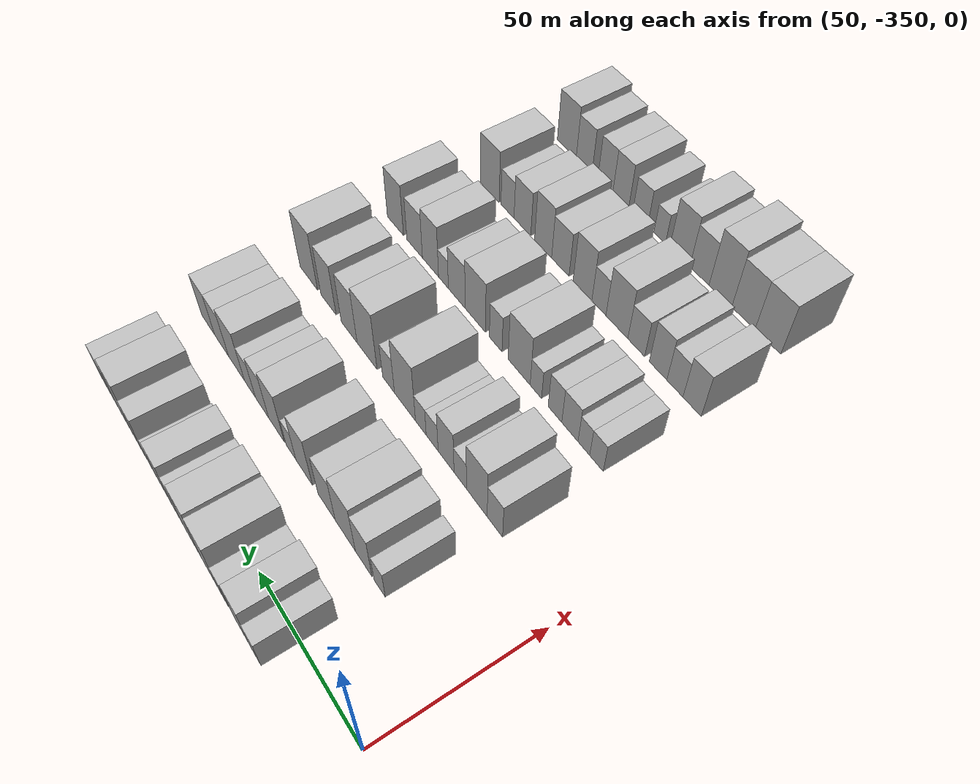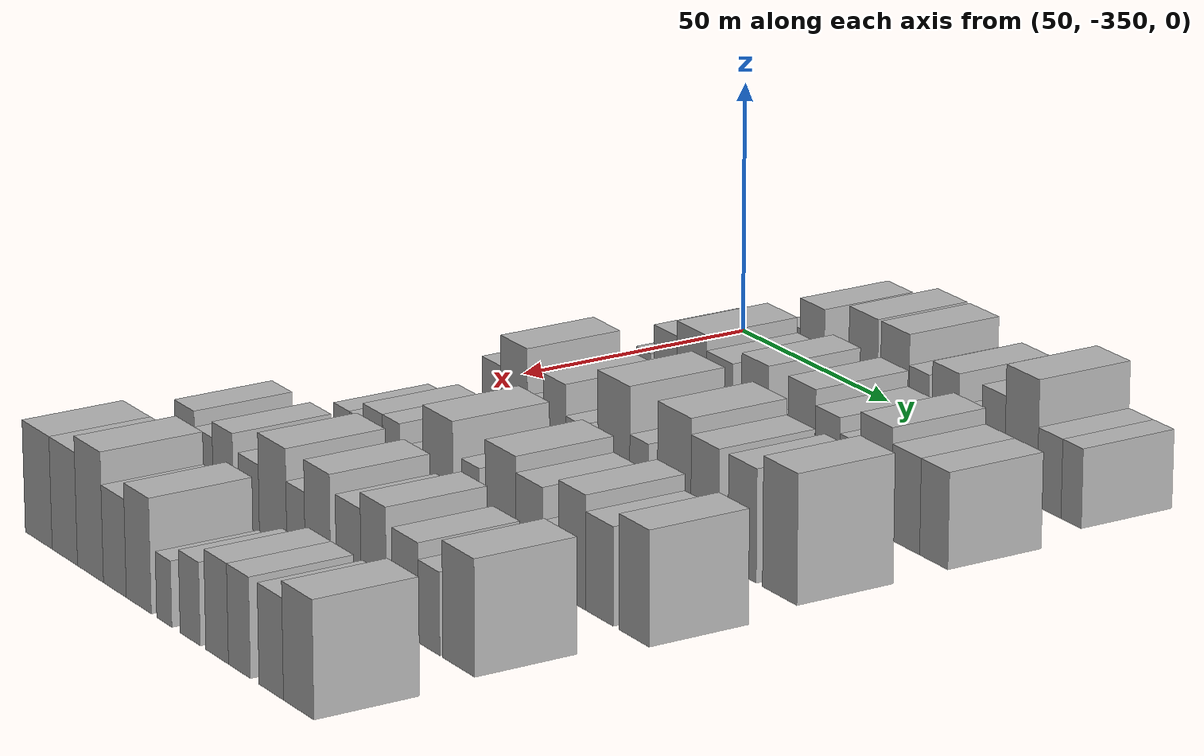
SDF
<sdf version="1.6">
 <world name="default">
  <model name="building_26">
   <static>1</static>
   <pose>50.0000 -318.0767 0 0.000000 0.000000 0.000000</pose>
   <link name="link">
    <pose>0 0 6.00 0 0 0</pose>
    <collision name="collision"><geometry><box><size>20.0000 5.7258 12.0000</size></box></geometry></collision>
    <visual name="visual">
     <cast_shadows>0</cast_shadows>
     <geometry><box><size>20.0000 5.7258 12.0000</size></box></geometry>
     <material>
      <script>
       <uri>model://HANNAS_wall/materials/scripts</uri>
       <uri>model://HANNAS_wall/materials/textures</uri>
       <name>vrc/HANNAS_wall</name>
      </script>
     </material>
    </visual>
   </link>
  </model>
  <model name="building_27">
   <static>1</static>
   <pose>50.0000 -311.0835 0 0.000000 0.000000 0.000000</pose>
   <link name="link">
    <pose>0 0 9.00 0 0 0</pose>
    <collision name="collision"><geometry><box><size>20.0000 8.2607 18.0000</size></box></geometry></collision>
    <visual name="visual">
     <cast_shadows>0</cast_shadows>
     <geometry><box><size>20.0000 8.2607 18.0000</size></box></geometry>
     <material>
      <script>
       <uri>model://HANNAS_wall/materials/scripts</uri>
       <uri>model://HANNAS_wall/materials/textures</uri>
       <name>vrc/HANNAS_wall</name>
      </script>
     </material>
    </visual>
   </link>
  </model>
  <model name="building_28">
   <static>1</static>
   <pose>50.0000 -301.3533 0 0.000000 0.000000 0.000000</pose>
   <link name="link">
    <pose>0 0 6.00 0 0 0</pose>
    <collision name="collision"><geometry><box><size>20.0000 5.1997 12.0000</size></box></geometry></collision>
    <visual name="visual">
     <cast_shadows>0</cast_shadows>
     <geometry><box><size>20.0000 5.1997 12.0000</size></box></geometry>
     <material>
      <script>
       <uri>model://HANNAS_wall/materials/scripts</uri>
       <uri>model://HANNAS_wall/materials/textures</uri>
       <name>vrc/HANNAS_wall</name>
      </script>
     </material>
    </visual>
   </link>
  </model>
  <model name="building_29">
   <static>1</static>
   <pose>50.0000 -293.9891 0 0.000000 0.000000 0.000000</pose>
   <link name="link">
    <pose>0 0 10.50 0 0 0</pose>
    <collision name="collision"><geometry><box><size>20.0000 9.5287 21.0000</size></box></geometry></collision>
    <visual name="visual">
     <cast_shadows>0</cast_shadows>
     <geometry><box><size>20.0000 9.5287 21.0000</size></box></geometry>
     <material>
      <script>
       <uri>model://HANNAS_wall/materials/scripts</uri>
       <uri>model://HANNAS_wall/materials/textures</uri>
       <name>vrc/HANNAS_wall</name>
      </script>
     </material>
    </visual>
   </link>
  </model>
  <model name="building_30">
   <static>1</static>
   <pose>50.0000 -283.5918 0 0.000000 0.000000 0.000000</pose>
   <link name="link">
    <pose>0 0 10.50 0 0 0</pose>
    <collision name="collision"><geometry><box><size>20.0000 9.2658 21.0000</size></box></geometry></collision>
    <visual name="visual">
     <cast_shadows>0</cast_shadows>
     <geometry><box><size>20.0000 9.2658 21.0000</size></box></geometry>
     <material>
      <script>
       <uri>model://HANNAS_wall/materials/scripts</uri>
       <uri>model://HANNAS_wall/materials/textures</uri>
       <name>vrc/HANNAS_wall</name>
      </script>
     </material>
    </visual>
   </link>
  </model>
  <model name="building_31">
   <static>1</static>
   <pose>50.0000 -275.7201 0 0.000000 0.000000 0.000000</pose>
   <link name="link">
    <pose>0 0 7.50 0 0 0</pose>
    <collision name="collision"><geometry><box><size>20.0000 6.4776 15.0000</size></box></geometry></collision>
    <visual name="visual">
     <cast_shadows>0</cast_shadows>
     <geometry><box><size>20.0000 6.4776 15.0000</size></box></geometry>
     <material>
      <script>
       <uri>model://HANNAS_wall/materials/scripts</uri>
       <uri>model://HANNAS_wall/materials/textures</uri>
       <name>vrc/HANNAS_wall</name>
      </script>
     </material>
    </visual>
   </link>
  </model>
  <model name="building_32">
   <static>1</static>
   <pose>50.0000 -267.2023 0 0.000000 0.000000 0.000000</pose>
   <link name="link">
    <pose>0 0 9.00 0 0 0</pose>
    <collision name="collision"><geometry><box><size>20.0000 8.5581 18.0000</size></box></geometry></collision>
    <visual name="visual">
     <cast_shadows>0</cast_shadows>
     <geometry><box><size>20.0000 8.5581 18.0000</size></box></geometry>
     <material>
      <script>
       <uri>model://HANNAS_wall/materials/scripts</uri>
       <uri>model://HANNAS_wall/materials/textures</uri>
       <name>vrc/HANNAS_wall</name>
      </script>
     </material>
    </visual>
   </link>
  </model>
  <model name="building_33">
   <static>1</static>
   <pose>50.0000 -260.3371 0 0.000000 0.000000 0.000000</pose>
   <link name="link">
    <pose>0 0 6.00 0 0 0</pose>
    <collision name="collision"><geometry><box><size>20.0000 5.1723 12.0000</size></box></geometry></collision>
    <visual name="visual">
     <cast_shadows>0</cast_shadows>
     <geometry><box><size>20.0000 5.1723 12.0000</size></box></geometry>
     <material>
      <script>
       <uri>model://HANNAS_wall/materials/scripts</uri>
       <uri>model://HANNAS_wall/materials/textures</uri>
       <name>vrc/HANNAS_wall</name>
      </script>
     </material>
    </visual>
   </link>
  </model>
  <model name="building_34">
   <static>1</static>
   <pose>50.0000 -252.0818 0 0.000000 0.000000 0.000000</pose>
   <link name="link">
    <pose>0 0 9.00 0 0 0</pose>
    <collision name="collision"><geometry><box><size>20.0000 7.3382 18.0000</size></box></geometry></collision>
    <visual name="visual">
     <cast_shadows>0</cast_shadows>
     <geometry><box><size>20.0000 7.3382 18.0000</size></box></geometry>
     <material>
      <script>
       <uri>model://HANNAS_wall/materials/scripts</uri>
       <uri>model://HANNAS_wall/materials/textures</uri>
       <name>vrc/HANNAS_wall</name>
      </script>
     </material>
    </visual>
   </link>
  </model>
  <model name="building_35">
   <static>1</static>
   <pose>50.0000 -243.3504 0 0.000000 0.000000 0.000000</pose>
   <link name="link">
    <pose>0 0 12.00 0 0 0</pose>
    <collision name="collision"><geometry><box><size>20.0000 10.1246 24.0000</size></box></geometry></collision>
    <visual name="visual">
     <cast_shadows>0</cast_shadows>
     <geometry><box><size>20.0000 10.1246 24.0000</size></box></geometry>
     <material>
      <script>
       <uri>model://HANNAS_wall/materials/scripts</uri>
       <uri>model://HANNAS_wall/materials/textures</uri>
       <name>vrc/HANNAS_wall</name>
      </script>
     </material>
    </visual>
   </link>
  </model>
  <model name="building_36">
   <static>1</static>
   <pose>50.0000 -234.6135 0 0.000000 0.000000 0.000000</pose>
   <link name="link">
    <pose>0 0 7.50 0 0 0</pose>
    <collision name="collision"><geometry><box><size>20.0000 7.3493 15.0000</size></box></geometry></collision>
    <visual name="visual">
     <cast_shadows>0</cast_shadows>
     <geometry><box><size>20.0000 7.3493 15.0000</size></box></geometry>
     <material>
      <script>
       <uri>model://HANNAS_wall/materials/scripts</uri>
       <uri>model://HANNAS_wall/materials/textures</uri>
       <name>vrc/HANNAS_wall</name>
      </script>
     </material>
    </visual>
   </link>
  </model>
  <model name="building_37">
   <static>1</static>
   <pose>50.0000 -227.8699 0 0.000000 0.000000 0.000000</pose>
   <link name="link">
    <pose>0 0 7.50 0 0 0</pose>
    <collision name="collision"><geometry><box><size>20.0000 6.1378 15.0000</size></box></geometry></collision>
    <visual name="visual">
     <cast_shadows>0</cast_shadows>
     <geometry><box><size>20.0000 6.1378 15.0000</size></box></geometry>
     <material>
      <script>
       <uri>model://HANNAS_wall/materials/scripts</uri>
       <uri>model://HANNAS_wall/materials/textures</uri>
       <name>vrc/HANNAS_wall</name>
      </script>
     </material>
    </visual>
   </link>
  </model>
  <model name="building_150">
   <static>1</static>
   <pose>82.0000 -319.8087 0 0.000000 0.000000 0.000000</pose>
   <link name="link">
    <pose>0 0 6.00 0 0 0</pose>
    <collision name="collision"><geometry><box><size>20.0000 5.2165 12.0000</size></box></geometry></collision>
    <visual name="visual">
     <cast_shadows>0</cast_shadows>
     <geometry><box><size>20.0000 5.2165 12.0000</size></box></geometry>
     <material>
      <script>
       <uri>model://HANNAS_wall/materials/scripts</uri>
       <uri>model://HANNAS_wall/materials/textures</uri>
       <name>vrc/HANNAS_wall</name>
      </script>
     </material>
    </visual>
   </link>
  </model>
  <model name="building_151">
   <static>1</static>
   <pose>82.0000 -312.2311 0 0.000000 0.000000 0.000000</pose>
   <link name="link">
    <pose>0 0 9.00 0 0 0</pose>
    <collision name="collision"><geometry><box><size>20.0000 7.9387 18.0000</size></box></geometry></collision>
    <visual name="visual">
     <cast_shadows>0</cast_shadows>
     <geometry><box><size>20.0000 7.9387 18.0000</size></box></geometry>
     <material>
      <script>
       <uri>model://HANNAS_wall/materials/scripts</uri>
       <uri>model://HANNAS_wall/materials/textures</uri>
       <name>vrc/HANNAS_wall</name>
      </script>
     </material>
    </visual>
   </link>
  </model>
  <model name="building_152">
   <static>1</static>
   <pose>82.0000 -303.2314 0 0.000000 0.000000 0.000000</pose>
   <link name="link">
    <pose>0 0 10.50 0 0 0</pose>
    <collision name="collision"><geometry><box><size>20.0000 10.0607 21.0000</size></box></geometry></collision>
    <visual name="visual">
     <cast_shadows>0</cast_shadows>
     <geometry><box><size>20.0000 10.0607 21.0000</size></box></geometry>
     <material>
      <script>
       <uri>model://HANNAS_wall/materials/scripts</uri>
       <uri>model://HANNAS_wall/materials/textures</uri>
       <name>vrc/HANNAS_wall</name>
      </script>
     </material>
    </visual>
   </link>
  </model>
  <model name="building_153">
   <static>1</static>
   <pose>82.0000 -293.7457 0 0.000000 0.000000 0.000000</pose>
   <link name="link">
    <pose>0 0 9.00 0 0 0</pose>
    <collision name="collision"><geometry><box><size>20.0000 8.9106 18.0000</size></box></geometry></collision>
    <visual name="visual">
     <cast_shadows>0</cast_shadows>
     <geometry><box><size>20.0000 8.9106 18.0000</size></box></geometry>
     <material>
      <script>
       <uri>model://HANNAS_wall/materials/scripts</uri>
       <uri>model://HANNAS_wall/materials/textures</uri>
       <name>vrc/HANNAS_wall</name>
      </script>
     </material>
    </visual>
   </link>
  </model>
  <model name="building_154">
   <static>1</static>
   <pose>82.0000 -281.8477 0 0.000000 0.000000 0.000000</pose>
   <link name="link">
    <pose>0 0 10.50 0 0 0</pose>
    <collision name="collision"><geometry><box><size>20.0000 8.8854 21.0000</size></box></geometry></collision>
    <visual name="visual">
     <cast_shadows>0</cast_shadows>
     <geometry><box><size>20.0000 8.8854 21.0000</size></box></geometry>
     <material>
      <script>
       <uri>model://HANNAS_wall/materials/scripts</uri>
       <uri>model://HANNAS_wall/materials/textures</uri>
       <name>vrc/HANNAS_wall</name>
      </script>
     </material>
    </visual>
   </link>
  </model>
  <model name="building_155">
   <static>1</static>
   <pose>82.0000 -274.6802 0 0.000000 0.000000 0.000000</pose>
   <link name="link">
    <pose>0 0 6.00 0 0 0</pose>
    <collision name="collision"><geometry><box><size>20.0000 5.4497 12.0000</size></box></geometry></collision>
    <visual name="visual">
     <cast_shadows>0</cast_shadows>
     <geometry><box><size>20.0000 5.4497 12.0000</size></box></geometry>
     <material>
      <script>
       <uri>model://HANNAS_wall/materials/scripts</uri>
       <uri>model://HANNAS_wall/materials/textures</uri>
       <name>vrc/HANNAS_wall</name>
      </script>
     </material>
    </visual>
   </link>
  </model>
  <model name="building_156">
   <static>1</static>
   <pose>82.0000 -266.4969 0 0.000000 0.000000 0.000000</pose>
   <link name="link">
    <pose>0 0 10.50 0 0 0</pose>
    <collision name="collision"><geometry><box><size>20.0000 8.9168 21.0000</size></box></geometry></collision>
    <visual name="visual">
     <cast_shadows>0</cast_shadows>
     <geometry><box><size>20.0000 8.9168 21.0000</size></box></geometry>
     <material>
      <script>
       <uri>model://HANNAS_wall/materials/scripts</uri>
       <uri>model://HANNAS_wall/materials/textures</uri>
       <name>vrc/HANNAS_wall</name>
      </script>
     </material>
    </visual>
   </link>
  </model>
  <model name="building_157">
   <static>1</static>
   <pose>82.0000 -258.1106 0 0.000000 0.000000 0.000000</pose>
   <link name="link">
    <pose>0 0 9.00 0 0 0</pose>
    <collision name="collision"><geometry><box><size>20.0000 7.8556 18.0000</size></box></geometry></collision>
    <visual name="visual">
     <cast_shadows>0</cast_shadows>
     <geometry><box><size>20.0000 7.8556 18.0000</size></box></geometry>
     <material>
      <script>
       <uri>model://HANNAS_wall/materials/scripts</uri>
       <uri>model://HANNAS_wall/materials/textures</uri>
       <name>vrc/HANNAS_wall</name>
      </script>
     </material>
    </visual>
   </link>
  </model>
  <model name="building_158">
   <static>1</static>
   <pose>82.0000 -250.9059 0 0.000000 0.000000 0.000000</pose>
   <link name="link">
    <pose>0 0 7.50 0 0 0</pose>
    <collision name="collision"><geometry><box><size>20.0000 6.5539 15.0000</size></box></geometry></collision>
    <visual name="visual">
     <cast_shadows>0</cast_shadows>
     <geometry><box><size>20.0000 6.5539 15.0000</size></box></geometry>
     <material>
      <script>
       <uri>model://HANNAS_wall/materials/scripts</uri>
       <uri>model://HANNAS_wall/materials/textures</uri>
       <name>vrc/HANNAS_wall</name>
      </script>
     </material>
    </visual>
   </link>
  </model>
  <model name="building_159">
   <static>1</static>
   <pose>82.0000 -242.6984 0 0.000000 0.000000 0.000000</pose>
   <link name="link">
    <pose>0 0 10.50 0 0 0</pose>
    <collision name="collision"><geometry><box><size>20.0000 9.8611 21.0000</size></box></geometry></collision>
    <visual name="visual">
     <cast_shadows>0</cast_shadows>
     <geometry><box><size>20.0000 9.8611 21.0000</size></box></geometry>
     <material>
      <script>
       <uri>model://HANNAS_wall/materials/scripts</uri>
       <uri>model://HANNAS_wall/materials/textures</uri>
       <name>vrc/HANNAS_wall</name>
      </script>
     </material>
    </visual>
   </link>
  </model>
  <model name="building_160">
   <static>1</static>
   <pose>82.0000 -233.3181 0 0.000000 0.000000 0.000000</pose>
   <link name="link">
    <pose>0 0 9.00 0 0 0</pose>
    <collision name="collision"><geometry><box><size>20.0000 8.8995 18.0000</size></box></geometry></collision>
    <visual name="visual">
     <cast_shadows>0</cast_shadows>
     <geometry><box><size>20.0000 8.8995 18.0000</size></box></geometry>
     <material>
      <script>
       <uri>model://HANNAS_wall/materials/scripts</uri>
       <uri>model://HANNAS_wall/materials/textures</uri>
       <name>vrc/HANNAS_wall</name>
      </script>
     </material>
    </visual>
   </link>
  </model>
  <model name="building_161">
   <static>1</static>
   <pose>82.0000 -224.5568 0 0.000000 0.000000 0.000000</pose>
   <link name="link">
    <pose>0 0 9.00 0 0 0</pose>
    <collision name="collision"><geometry><box><size>20.0000 8.6230 18.0000</size></box></geometry></collision>
    <visual name="visual">
     <cast_shadows>0</cast_shadows>
     <geometry><box><size>20.0000 8.6230 18.0000</size></box></geometry>
     <material>
      <script>
       <uri>model://HANNAS_wall/materials/scripts</uri>
       <uri>model://HANNAS_wall/materials/textures</uri>
       <name>vrc/HANNAS_wall</name>
      </script>
     </material>
    </visual>
   </link>
  </model>
  <model name="building_270">
   <static>1</static>
   <pose>114.0000 -321.6198 0 0.000000 0.000000 0.000000</pose>
   <link name="link">
    <pose>0 0 7.50 0 0 0</pose>
    <collision name="collision"><geometry><box><size>20.0000 6.7639 15.0000</size></box></geometry></collision>
    <visual name="visual">
     <cast_shadows>0</cast_shadows>
     <geometry><box><size>20.0000 6.7639 15.0000</size></box></geometry>
     <material>
      <script>
       <uri>model://HANNAS_wall/materials/scripts</uri>
       <uri>model://HANNAS_wall/materials/textures</uri>
       <name>vrc/HANNAS_wall</name>
      </script>
     </material>
    </visual>
   </link>
  </model>
  <model name="building_271">
   <static>1</static>
   <pose>114.0000 -313.5680 0 0.000000 0.000000 0.000000</pose>
   <link name="link">
    <pose>0 0 10.50 0 0 0</pose>
    <collision name="collision"><geometry><box><size>20.0000 9.3398 21.0000</size></box></geometry></collision>
    <visual name="visual">
     <cast_shadows>0</cast_shadows>
     <geometry><box><size>20.0000 9.3398 21.0000</size></box></geometry>
     <material>
      <script>
       <uri>model://HANNAS_wall/materials/scripts</uri>
       <uri>model://HANNAS_wall/materials/textures</uri>
       <name>vrc/HANNAS_wall</name>
      </script>
     </material>
    </visual>
   </link>
  </model>
  <model name="building_272">
   <static>1</static>
   <pose>114.0000 -306.0086 0 0.000000 0.000000 0.000000</pose>
   <link name="link">
    <pose>0 0 6.00 0 0 0</pose>
    <collision name="collision"><geometry><box><size>20.0000 5.7790 12.0000</size></box></geometry></collision>
    <visual name="visual">
     <cast_shadows>0</cast_shadows>
     <geometry><box><size>20.0000 5.7790 12.0000</size></box></geometry>
     <material>
      <script>
       <uri>model://HANNAS_wall/materials/scripts</uri>
       <uri>model://HANNAS_wall/materials/textures</uri>
       <name>vrc/HANNAS_wall</name>
      </script>
     </material>
    </visual>
   </link>
  </model>
  <model name="building_273">
   <static>1</static>
   <pose>114.0000 -299.3256 0 0.000000 0.000000 0.000000</pose>
   <link name="link">
    <pose>0 0 9.00 0 0 0</pose>
    <collision name="collision"><geometry><box><size>20.0000 7.5870 18.0000</size></box></geometry></collision>
    <visual name="visual">
     <cast_shadows>0</cast_shadows>
     <geometry><box><size>20.0000 7.5870 18.0000</size></box></geometry>
     <material>
      <script>
       <uri>model://HANNAS_wall/materials/scripts</uri>
       <uri>model://HANNAS_wall/materials/textures</uri>
       <name>vrc/HANNAS_wall</name>
      </script>
     </material>
    </visual>
   </link>
  </model>
  <model name="building_274">
   <static>1</static>
   <pose>114.0000 -292.6182 0 0.000000 0.000000 0.000000</pose>
   <link name="link">
    <pose>0 0 6.00 0 0 0</pose>
    <collision name="collision"><geometry><box><size>20.0000 5.8278 12.0000</size></box></geometry></collision>
    <visual name="visual">
     <cast_shadows>0</cast_shadows>
     <geometry><box><size>20.0000 5.8278 12.0000</size></box></geometry>
     <material>
      <script>
       <uri>model://HANNAS_wall/materials/scripts</uri>
       <uri>model://HANNAS_wall/materials/textures</uri>
       <name>vrc/HANNAS_wall</name>
      </script>
     </material>
    </visual>
   </link>
  </model>
  <model name="building_275">
   <static>1</static>
   <pose>114.0000 -287.0255 0 0.000000 0.000000 0.000000</pose>
   <link name="link">
    <pose>0 0 6.00 0 0 0</pose>
    <collision name="collision"><geometry><box><size>20.0000 5.3578 12.0000</size></box></geometry></collision>
    <visual name="visual">
     <cast_shadows>0</cast_shadows>
     <geometry><box><size>20.0000 5.3578 12.0000</size></box></geometry>
     <material>
      <script>
       <uri>model://HANNAS_wall/materials/scripts</uri>
       <uri>model://HANNAS_wall/materials/textures</uri>
       <name>vrc/HANNAS_wall</name>
      </script>
     </material>
    </visual>
   </link>
  </model>
  <model name="building_276">
   <static>1</static>
   <pose>114.0000 -278.9676 0 0.000000 0.000000 0.000000</pose>
   <link name="link">
    <pose>0 0 12.00 0 0 0</pose>
    <collision name="collision"><geometry><box><size>20.0000 10.7580 24.0000</size></box></geometry></collision>
    <visual name="visual">
     <cast_shadows>0</cast_shadows>
     <geometry><box><size>20.0000 10.7580 24.0000</size></box></geometry>
     <material>
      <script>
       <uri>model://HANNAS_wall/materials/scripts</uri>
       <uri>model://HANNAS_wall/materials/textures</uri>
       <name>vrc/HANNAS_wall</name>
      </script>
     </material>
    </visual>
   </link>
  </model>
  <model name="building_277">
   <static>1</static>
   <pose>114.0000 -270.4564 0 0.000000 0.000000 0.000000</pose>
   <link name="link">
    <pose>0 0 7.50 0 0 0</pose>
    <collision name="collision"><geometry><box><size>20.0000 6.2644 15.0000</size></box></geometry></collision>
    <visual name="visual">
     <cast_shadows>0</cast_shadows>
     <geometry><box><size>20.0000 6.2644 15.0000</size></box></geometry>
     <material>
      <script>
       <uri>model://HANNAS_wall/materials/scripts</uri>
       <uri>model://HANNAS_wall/materials/textures</uri>
       <name>vrc/HANNAS_wall</name>
      </script>
     </material>
    </visual>
   </link>
  </model>
  <model name="building_278">
   <static>1</static>
   <pose>114.0000 -258.8366 0 0.000000 0.000000 0.000000</pose>
   <link name="link">
    <pose>0 0 12.00 0 0 0</pose>
    <collision name="collision"><geometry><box><size>20.0000 10.9751 24.0000</size></box></geometry></collision>
    <visual name="visual">
     <cast_shadows>0</cast_shadows>
     <geometry><box><size>20.0000 10.9751 24.0000</size></box></geometry>
     <material>
      <script>
       <uri>model://HANNAS_wall/materials/scripts</uri>
       <uri>model://HANNAS_wall/materials/textures</uri>
       <name>vrc/HANNAS_wall</name>
      </script>
     </material>
    </visual>
   </link>
  </model>
  <model name="building_279">
   <static>1</static>
   <pose>114.0000 -248.8255 0 0.000000 0.000000 0.000000</pose>
   <link name="link">
    <pose>0 0 10.50 0 0 0</pose>
    <collision name="collision"><geometry><box><size>20.0000 9.0470 21.0000</size></box></geometry></collision>
    <visual name="visual">
     <cast_shadows>0</cast_shadows>
     <geometry><box><size>20.0000 9.0470 21.0000</size></box></geometry>
     <material>
      <script>
       <uri>model://HANNAS_wall/materials/scripts</uri>
       <uri>model://HANNAS_wall/materials/textures</uri>
       <name>vrc/HANNAS_wall</name>
      </script>
     </material>
    </visual>
   </link>
  </model>
  <model name="building_280">
   <static>1</static>
   <pose>114.0000 -236.8016 0 0.000000 0.000000 0.000000</pose>
   <link name="link">
    <pose>0 0 10.50 0 0 0</pose>
    <collision name="collision"><geometry><box><size>20.0000 9.0010 21.0000</size></box></geometry></collision>
    <visual name="visual">
     <cast_shadows>0</cast_shadows>
     <geometry><box><size>20.0000 9.0010 21.0000</size></box></geometry>
     <material>
      <script>
       <uri>model://HANNAS_wall/materials/scripts</uri>
       <uri>model://HANNAS_wall/materials/textures</uri>
       <name>vrc/HANNAS_wall</name>
      </script>
     </material>
    </visual>
   </link>
  </model>
  <model name="building_281">
   <static>1</static>
   <pose>114.0000 -224.9300 0 0.000000 0.000000 0.000000</pose>
   <link name="link">
    <pose>0 0 12.00 0 0 0</pose>
    <collision name="collision"><geometry><box><size>20.0000 10.7422 24.0000</size></box></geometry></collision>
    <visual name="visual">
     <cast_shadows>0</cast_shadows>
     <geometry><box><size>20.0000 10.7422 24.0000</size></box></geometry>
     <material>
      <script>
       <uri>model://HANNAS_wall/materials/scripts</uri>
       <uri>model://HANNAS_wall/materials/textures</uri>
       <name>vrc/HANNAS_wall</name>
      </script>
     </material>
    </visual>
   </link>
  </model>
  <model name="building_395">
   <static>1</static>
   <pose>146.0000 -321.2487 0 0.000000 0.000000 0.000000</pose>
   <link name="link">
    <pose>0 0 6.00 0 0 0</pose>
    <collision name="collision"><geometry><box><size>20.0000 5.7088 12.0000</size></box></geometry></collision>
    <visual name="visual">
     <cast_shadows>0</cast_shadows>
     <geometry><box><size>20.0000 5.7088 12.0000</size></box></geometry>
     <material>
      <script>
       <uri>model://HANNAS_wall/materials/scripts</uri>
       <uri>model://HANNAS_wall/materials/textures</uri>
       <name>vrc/HANNAS_wall</name>
      </script>
     </material>
    </visual>
   </link>
  </model>
  <model name="building_396">
   <static>1</static>
   <pose>146.0000 -315.8850 0 0.000000 0.000000 0.000000</pose>
   <link name="link">
    <pose>0 0 6.00 0 0 0</pose>
    <collision name="collision"><geometry><box><size>20.0000 5.0186 12.0000</size></box></geometry></collision>
    <visual name="visual">
     <cast_shadows>0</cast_shadows>
     <geometry><box><size>20.0000 5.0186 12.0000</size></box></geometry>
     <material>
      <script>
       <uri>model://HANNAS_wall/materials/scripts</uri>
       <uri>model://HANNAS_wall/materials/textures</uri>
       <name>vrc/HANNAS_wall</name>
      </script>
     </material>
    </visual>
   </link>
  </model>
  <model name="building_397">
   <static>1</static>
   <pose>146.0000 -309.8037 0 0.000000 0.000000 0.000000</pose>
   <link name="link">
    <pose>0 0 7.50 0 0 0</pose>
    <collision name="collision"><geometry><box><size>20.0000 7.1439 15.0000</size></box></geometry></collision>
    <visual name="visual">
     <cast_shadows>0</cast_shadows>
     <geometry><box><size>20.0000 7.1439 15.0000</size></box></geometry>
     <material>
      <script>
       <uri>model://HANNAS_wall/materials/scripts</uri>
       <uri>model://HANNAS_wall/materials/textures</uri>
       <name>vrc/HANNAS_wall</name>
      </script>
     </material>
    </visual>
   </link>
  </model>
  <model name="building_398">
   <static>1</static>
   <pose>146.0000 -303.1728 0 0.000000 0.000000 0.000000</pose>
   <link name="link">
    <pose>0 0 7.50 0 0 0</pose>
    <collision name="collision"><geometry><box><size>20.0000 6.1179 15.0000</size></box></geometry></collision>
    <visual name="visual">
     <cast_shadows>0</cast_shadows>
     <geometry><box><size>20.0000 6.1179 15.0000</size></box></geometry>
     <material>
      <script>
       <uri>model://HANNAS_wall/materials/scripts</uri>
       <uri>model://HANNAS_wall/materials/textures</uri>
       <name>vrc/HANNAS_wall</name>
      </script>
     </material>
    </visual>
   </link>
  </model>
  <model name="building_399">
   <static>1</static>
   <pose>146.0000 -294.4736 0 0.000000 0.000000 0.000000</pose>
   <link name="link">
    <pose>0 0 6.00 0 0 0</pose>
    <collision name="collision"><geometry><box><size>20.0000 5.2806 12.0000</size></box></geometry></collision>
    <visual name="visual">
     <cast_shadows>0</cast_shadows>
     <geometry><box><size>20.0000 5.2806 12.0000</size></box></geometry>
     <material>
      <script>
       <uri>model://HANNAS_wall/materials/scripts</uri>
       <uri>model://HANNAS_wall/materials/textures</uri>
       <name>vrc/HANNAS_wall</name>
      </script>
     </material>
    </visual>
   </link>
  </model>
  <model name="building_400">
   <static>1</static>
   <pose>146.0000 -286.5898 0 0.000000 0.000000 0.000000</pose>
   <link name="link">
    <pose>0 0 10.50 0 0 0</pose>
    <collision name="collision"><geometry><box><size>20.0000 10.4870 21.0000</size></box></geometry></collision>
    <visual name="visual">
     <cast_shadows>0</cast_shadows>
     <geometry><box><size>20.0000 10.4870 21.0000</size></box></geometry>
     <material>
      <script>
       <uri>model://HANNAS_wall/materials/scripts</uri>
       <uri>model://HANNAS_wall/materials/textures</uri>
       <name>vrc/HANNAS_wall</name>
      </script>
     </material>
    </visual>
   </link>
  </model>
  <model name="building_401">
   <static>1</static>
   <pose>146.0000 -275.2353 0 0.000000 0.000000 0.000000</pose>
   <link name="link">
    <pose>0 0 7.50 0 0 0</pose>
    <collision name="collision"><geometry><box><size>20.0000 6.2220 15.0000</size></box></geometry></collision>
    <visual name="visual">
     <cast_shadows>0</cast_shadows>
     <geometry><box><size>20.0000 6.2220 15.0000</size></box></geometry>
     <material>
      <script>
       <uri>model://HANNAS_wall/materials/scripts</uri>
       <uri>model://HANNAS_wall/materials/textures</uri>
       <name>vrc/HANNAS_wall</name>
      </script>
     </material>
    </visual>
   </link>
  </model>
  <model name="building_402">
   <static>1</static>
   <pose>146.0000 -264.9301 0 0.000000 0.000000 0.000000</pose>
   <link name="link">
    <pose>0 0 10.50 0 0 0</pose>
    <collision name="collision"><geometry><box><size>20.0000 10.3883 21.0000</size></box></geometry></collision>
    <visual name="visual">
     <cast_shadows>0</cast_shadows>
     <geometry><box><size>20.0000 10.3883 21.0000</size></box></geometry>
     <material>
      <script>
       <uri>model://HANNAS_wall/materials/scripts</uri>
       <uri>model://HANNAS_wall/materials/textures</uri>
       <name>vrc/HANNAS_wall</name>
      </script>
     </material>
    </visual>
   </link>
  </model>
  <model name="building_403">
   <static>1</static>
   <pose>146.0000 -255.2892 0 0.000000 0.000000 0.000000</pose>
   <link name="link">
    <pose>0 0 9.00 0 0 0</pose>
    <collision name="collision"><geometry><box><size>20.0000 8.8936 18.0000</size></box></geometry></collision>
    <visual name="visual">
     <cast_shadows>0</cast_shadows>
     <geometry><box><size>20.0000 8.8936 18.0000</size></box></geometry>
     <material>
      <script>
       <uri>model://HANNAS_wall/materials/scripts</uri>
       <uri>model://HANNAS_wall/materials/textures</uri>
       <name>vrc/HANNAS_wall</name>
      </script>
     </material>
    </visual>
   </link>
  </model>
  <model name="building_404">
   <static>1</static>
   <pose>146.0000 -248.1856 0 0.000000 0.000000 0.000000</pose>
   <link name="link">
    <pose>0 0 6.00 0 0 0</pose>
    <collision name="collision"><geometry><box><size>20.0000 5.3136 12.0000</size></box></geometry></collision>
    <visual name="visual">
     <cast_shadows>0</cast_shadows>
     <geometry><box><size>20.0000 5.3136 12.0000</size></box></geometry>
     <material>
      <script>
       <uri>model://HANNAS_wall/materials/scripts</uri>
       <uri>model://HANNAS_wall/materials/textures</uri>
       <name>vrc/HANNAS_wall</name>
      </script>
     </material>
    </visual>
   </link>
  </model>
  <model name="building_405">
   <static>1</static>
   <pose>146.0000 -241.0685 0 0.000000 0.000000 0.000000</pose>
   <link name="link">
    <pose>0 0 10.50 0 0 0</pose>
    <collision name="collision"><geometry><box><size>20.0000 8.9206 21.0000</size></box></geometry></collision>
    <visual name="visual">
     <cast_shadows>0</cast_shadows>
     <geometry><box><size>20.0000 8.9206 21.0000</size></box></geometry>
     <material>
      <script>
       <uri>model://HANNAS_wall/materials/scripts</uri>
       <uri>model://HANNAS_wall/materials/textures</uri>
       <name>vrc/HANNAS_wall</name>
      </script>
     </material>
    </visual>
   </link>
  </model>
  <model name="building_406">
   <static>1</static>
   <pose>146.0000 -232.1932 0 0.000000 0.000000 0.000000</pose>
   <link name="link">
    <pose>0 0 9.00 0 0 0</pose>
    <collision name="collision"><geometry><box><size>20.0000 8.8302 18.0000</size></box></geometry></collision>
    <visual name="visual">
     <cast_shadows>0</cast_shadows>
     <geometry><box><size>20.0000 8.8302 18.0000</size></box></geometry>
     <material>
      <script>
       <uri>model://HANNAS_wall/materials/scripts</uri>
       <uri>model://HANNAS_wall/materials/textures</uri>
       <name>vrc/HANNAS_wall</name>
      </script>
     </material>
    </visual>
   </link>
  </model>
  <model name="building_407">
   <static>1</static>
   <pose>146.0000 -221.0477 0 0.000000 0.000000 0.000000</pose>
   <link name="link">
    <pose>0 0 10.50 0 0 0</pose>
    <collision name="collision"><geometry><box><size>20.0000 9.4608 21.0000</size></box></geometry></collision>
    <visual name="visual">
     <cast_shadows>0</cast_shadows>
     <geometry><box><size>20.0000 9.4608 21.0000</size></box></geometry>
     <material>
      <script>
       <uri>model://HANNAS_wall/materials/scripts</uri>
       <uri>model://HANNAS_wall/materials/textures</uri>
       <name>vrc/HANNAS_wall</name>
      </script>
     </material>
    </visual>
   </link>
  </model>
  <model name="building_513">
   <static>1</static>
   <pose>178.0000 -321.6381 0 0.000000 0.000000 0.000000</pose>
   <link name="link">
    <pose>0 0 9.00 0 0 0</pose>
    <collision name="collision"><geometry><box><size>20.0000 7.4641 18.0000</size></box></geometry></collision>
    <visual name="visual">
     <cast_shadows>0</cast_shadows>
     <geometry><box><size>20.0000 7.4641 18.0000</size></box></geometry>
     <material>
      <script>
       <uri>model://HANNAS_wall/materials/scripts</uri>
       <uri>model://HANNAS_wall/materials/textures</uri>
       <name>vrc/HANNAS_wall</name>
      </script>
     </material>
    </visual>
   </link>
  </model>
  <model name="building_514">
   <static>1</static>
   <pose>178.0000 -314.5461 0 0.000000 0.000000 0.000000</pose>
   <link name="link">
    <pose>0 0 7.50 0 0 0</pose>
    <collision name="collision"><geometry><box><size>20.0000 6.7200 15.0000</size></box></geometry></collision>
    <visual name="visual">
     <cast_shadows>0</cast_shadows>
     <geometry><box><size>20.0000 6.7200 15.0000</size></box></geometry>
     <material>
      <script>
       <uri>model://HANNAS_wall/materials/scripts</uri>
       <uri>model://HANNAS_wall/materials/textures</uri>
       <name>vrc/HANNAS_wall</name>
      </script>
     </material>
    </visual>
   </link>
  </model>
  <model name="building_515">
   <static>1</static>
   <pose>178.0000 -307.4295 0 0.000000 0.000000 0.000000</pose>
   <link name="link">
    <pose>0 0 9.00 0 0 0</pose>
    <collision name="collision"><geometry><box><size>20.0000 7.5131 18.0000</size></box></geometry></collision>
    <visual name="visual">
     <cast_shadows>0</cast_shadows>
     <geometry><box><size>20.0000 7.5131 18.0000</size></box></geometry>
     <material>
      <script>
       <uri>model://HANNAS_wall/materials/scripts</uri>
       <uri>model://HANNAS_wall/materials/textures</uri>
       <name>vrc/HANNAS_wall</name>
      </script>
     </material>
    </visual>
   </link>
  </model>
  <model name="building_516">
   <static>1</static>
   <pose>178.0000 -297.9398 0 0.000000 0.000000 0.000000</pose>
   <link name="link">
    <pose>0 0 7.50 0 0 0</pose>
    <collision name="collision"><geometry><box><size>20.0000 7.4663 15.0000</size></box></geometry></collision>
    <visual name="visual">
     <cast_shadows>0</cast_shadows>
     <geometry><box><size>20.0000 7.4663 15.0000</size></box></geometry>
     <material>
      <script>
       <uri>model://HANNAS_wall/materials/scripts</uri>
       <uri>model://HANNAS_wall/materials/textures</uri>
       <name>vrc/HANNAS_wall</name>
      </script>
     </material>
    </visual>
   </link>
  </model>
  <model name="building_517">
   <static>1</static>
   <pose>178.0000 -289.2197 0 0.000000 0.000000 0.000000</pose>
   <link name="link">
    <pose>0 0 10.50 0 0 0</pose>
    <collision name="collision"><geometry><box><size>20.0000 9.9739 21.0000</size></box></geometry></collision>
    <visual name="visual">
     <cast_shadows>0</cast_shadows>
     <geometry><box><size>20.0000 9.9739 21.0000</size></box></geometry>
     <material>
      <script>
       <uri>model://HANNAS_wall/materials/scripts</uri>
       <uri>model://HANNAS_wall/materials/textures</uri>
       <name>vrc/HANNAS_wall</name>
      </script>
     </material>
    </visual>
   </link>
  </model>
  <model name="building_518">
   <static>1</static>
   <pose>178.0000 -280.9538 0 0.000000 0.000000 0.000000</pose>
   <link name="link">
    <pose>0 0 7.50 0 0 0</pose>
    <collision name="collision"><geometry><box><size>20.0000 6.5580 15.0000</size></box></geometry></collision>
    <visual name="visual">
     <cast_shadows>0</cast_shadows>
     <geometry><box><size>20.0000 6.5580 15.0000</size></box></geometry>
     <material>
      <script>
       <uri>model://HANNAS_wall/materials/scripts</uri>
       <uri>model://HANNAS_wall/materials/textures</uri>
       <name>vrc/HANNAS_wall</name>
      </script>
     </material>
    </visual>
   </link>
  </model>
  <model name="building_519">
   <static>1</static>
   <pose>178.0000 -273.1672 0 0.000000 0.000000 0.000000</pose>
   <link name="link">
    <pose>0 0 10.50 0 0 0</pose>
    <collision name="collision"><geometry><box><size>20.0000 9.0153 21.0000</size></box></geometry></collision>
    <visual name="visual">
     <cast_shadows>0</cast_shadows>
     <geometry><box><size>20.0000 9.0153 21.0000</size></box></geometry>
     <material>
      <script>
       <uri>model://HANNAS_wall/materials/scripts</uri>
       <uri>model://HANNAS_wall/materials/textures</uri>
       <name>vrc/HANNAS_wall</name>
      </script>
     </material>
    </visual>
   </link>
  </model>
  <model name="building_520">
   <static>1</static>
   <pose>178.0000 -262.3242 0 0.000000 0.000000 0.000000</pose>
   <link name="link">
    <pose>0 0 9.00 0 0 0</pose>
    <collision name="collision"><geometry><box><size>20.0000 8.6708 18.0000</size></box></geometry></collision>
    <visual name="visual">
     <cast_shadows>0</cast_shadows>
     <geometry><box><size>20.0000 8.6708 18.0000</size></box></geometry>
     <material>
      <script>
       <uri>model://HANNAS_wall/materials/scripts</uri>
       <uri>model://HANNAS_wall/materials/textures</uri>
       <name>vrc/HANNAS_wall</name>
      </script>
     </material>
    </visual>
   </link>
  </model>
  <model name="building_521">
   <static>1</static>
   <pose>178.0000 -253.6463 0 0.000000 0.000000 0.000000</pose>
   <link name="link">
    <pose>0 0 10.50 0 0 0</pose>
    <collision name="collision"><geometry><box><size>20.0000 8.6850 21.0000</size></box></geometry></collision>
    <visual name="visual">
     <cast_shadows>0</cast_shadows>
     <geometry><box><size>20.0000 8.6850 21.0000</size></box></geometry>
     <material>
      <script>
       <uri>model://HANNAS_wall/materials/scripts</uri>
       <uri>model://HANNAS_wall/materials/textures</uri>
       <name>vrc/HANNAS_wall</name>
      </script>
     </material>
    </visual>
   </link>
  </model>
  <model name="building_522">
   <static>1</static>
   <pose>178.0000 -242.8824 0 0.000000 0.000000 0.000000</pose>
   <link name="link">
    <pose>0 0 9.00 0 0 0</pose>
    <collision name="collision"><geometry><box><size>20.0000 8.8429 18.0000</size></box></geometry></collision>
    <visual name="visual">
     <cast_shadows>0</cast_shadows>
     <geometry><box><size>20.0000 8.8429 18.0000</size></box></geometry>
     <material>
      <script>
       <uri>model://HANNAS_wall/materials/scripts</uri>
       <uri>model://HANNAS_wall/materials/textures</uri>
       <name>vrc/HANNAS_wall</name>
      </script>
     </material>
    </visual>
   </link>
  </model>
  <model name="building_523">
   <static>1</static>
   <pose>178.0000 -234.9253 0 0.000000 0.000000 0.000000</pose>
   <link name="link">
    <pose>0 0 7.50 0 0 0</pose>
    <collision name="collision"><geometry><box><size>20.0000 7.0714 15.0000</size></box></geometry></collision>
    <visual name="visual">
     <cast_shadows>0</cast_shadows>
     <geometry><box><size>20.0000 7.0714 15.0000</size></box></geometry>
     <material>
      <script>
       <uri>model://HANNAS_wall/materials/scripts</uri>
       <uri>model://HANNAS_wall/materials/textures</uri>
       <name>vrc/HANNAS_wall</name>
      </script>
     </material>
    </visual>
   </link>
  </model>
  <model name="building_524">
   <static>1</static>
   <pose>178.0000 -225.1611 0 0.000000 0.000000 0.000000</pose>
   <link name="link">
    <pose>0 0 10.50 0 0 0</pose>
    <collision name="collision"><geometry><box><size>20.0000 10.4570 21.0000</size></box></geometry></collision>
    <visual name="visual">
     <cast_shadows>0</cast_shadows>
     <geometry><box><size>20.0000 10.4570 21.0000</size></box></geometry>
     <material>
      <script>
       <uri>model://HANNAS_wall/materials/scripts</uri>
       <uri>model://HANNAS_wall/materials/textures</uri>
       <name>vrc/HANNAS_wall</name>
      </script>
     </material>
    </visual>
   </link>
  </model>
  <model name="building_632">
   <static>1</static>
   <pose>210.0000 -316.8085 0 0.000000 0.000000 0.000000</pose>
   <link name="link">
    <pose>0 0 10.50 0 0 0</pose>
    <collision name="collision"><geometry><box><size>20.0000 10.4179 21.0000</size></box></geometry></collision>
    <visual name="visual">
     <cast_shadows>0</cast_shadows>
     <geometry><box><size>20.0000 10.4179 21.0000</size></box></geometry>
     <material>
      <script>
       <uri>model://HANNAS_wall/materials/scripts</uri>
       <uri>model://HANNAS_wall/materials/textures</uri>
       <name>vrc/HANNAS_wall</name>
      </script>
     </material>
    </visual>
   </link>
  </model>
  <model name="building_633">
   <static>1</static>
   <pose>210.0000 -306.7393 0 0.000000 0.000000 0.000000</pose>
   <link name="link">
    <pose>0 0 10.50 0 0 0</pose>
    <collision name="collision"><geometry><box><size>20.0000 9.7205 21.0000</size></box></geometry></collision>
    <visual name="visual">
     <cast_shadows>0</cast_shadows>
     <geometry><box><size>20.0000 9.7205 21.0000</size></box></geometry>
     <material>
      <script>
       <uri>model://HANNAS_wall/materials/scripts</uri>
       <uri>model://HANNAS_wall/materials/textures</uri>
       <name>vrc/HANNAS_wall</name>
      </script>
     </material>
    </visual>
   </link>
  </model>
  <model name="building_634">
   <static>1</static>
   <pose>210.0000 -296.9644 0 0.000000 0.000000 0.000000</pose>
   <link name="link">
    <pose>0 0 12.00 0 0 0</pose>
    <collision name="collision"><geometry><box><size>20.0000 9.8294 24.0000</size></box></geometry></collision>
    <visual name="visual">
     <cast_shadows>0</cast_shadows>
     <geometry><box><size>20.0000 9.8294 24.0000</size></box></geometry>
     <material>
      <script>
       <uri>model://HANNAS_wall/materials/scripts</uri>
       <uri>model://HANNAS_wall/materials/textures</uri>
       <name>vrc/HANNAS_wall</name>
      </script>
     </material>
    </visual>
   </link>
  </model>
  <model name="building_635">
   <static>1</static>
   <pose>210.0000 -287.7779 0 0.000000 0.000000 0.000000</pose>
   <link name="link">
    <pose>0 0 9.00 0 0 0</pose>
    <collision name="collision"><geometry><box><size>20.0000 8.5436 18.0000</size></box></geometry></collision>
    <visual name="visual">
     <cast_shadows>0</cast_shadows>
     <geometry><box><size>20.0000 8.5436 18.0000</size></box></geometry>
     <material>
      <script>
       <uri>model://HANNAS_wall/materials/scripts</uri>
       <uri>model://HANNAS_wall/materials/textures</uri>
       <name>vrc/HANNAS_wall</name>
      </script>
     </material>
    </visual>
   </link>
  </model>
  <model name="building_636">
   <static>1</static>
   <pose>210.0000 -278.9245 0 0.000000 0.000000 0.000000</pose>
   <link name="link">
    <pose>0 0 10.50 0 0 0</pose>
    <collision name="collision"><geometry><box><size>20.0000 9.1631 21.0000</size></box></geometry></collision>
    <visual name="visual">
     <cast_shadows>0</cast_shadows>
     <geometry><box><size>20.0000 9.1631 21.0000</size></box></geometry>
     <material>
      <script>
       <uri>model://HANNAS_wall/materials/scripts</uri>
       <uri>model://HANNAS_wall/materials/textures</uri>
       <name>vrc/HANNAS_wall</name>
      </script>
     </material>
    </visual>
   </link>
  </model>
  <model name="building_637">
   <static>1</static>
   <pose>210.0000 -269.6000 0 0.000000 0.000000 0.000000</pose>
   <link name="link">
    <pose>0 0 6.00 0 0 0</pose>
    <collision name="collision"><geometry><box><size>20.0000 5.4859 12.0000</size></box></geometry></collision>
    <visual name="visual">
     <cast_shadows>0</cast_shadows>
     <geometry><box><size>20.0000 5.4859 12.0000</size></box></geometry>
     <material>
      <script>
       <uri>model://HANNAS_wall/materials/scripts</uri>
       <uri>model://HANNAS_wall/materials/textures</uri>
       <name>vrc/HANNAS_wall</name>
      </script>
     </material>
    </visual>
   </link>
  </model>
  <model name="building_638">
   <static>1</static>
   <pose>210.0000 -260.2641 0 0.000000 0.000000 0.000000</pose>
   <link name="link">
    <pose>0 0 7.50 0 0 0</pose>
    <collision name="collision"><geometry><box><size>20.0000 7.1858 15.0000</size></box></geometry></collision>
    <visual name="visual">
     <cast_shadows>0</cast_shadows>
     <geometry><box><size>20.0000 7.1858 15.0000</size></box></geometry>
     <material>
      <script>
       <uri>model://HANNAS_wall/materials/scripts</uri>
       <uri>model://HANNAS_wall/materials/textures</uri>
       <name>vrc/HANNAS_wall</name>
      </script>
     </material>
    </visual>
   </link>
  </model>
  <model name="building_639">
   <static>1</static>
   <pose>210.0000 -250.6910 0 0.000000 0.000000 0.000000</pose>
   <link name="link">
    <pose>0 0 9.00 0 0 0</pose>
    <collision name="collision"><geometry><box><size>20.0000 7.9605 18.0000</size></box></geometry></collision>
    <visual name="visual">
     <cast_shadows>0</cast_shadows>
     <geometry><box><size>20.0000 7.9605 18.0000</size></box></geometry>
     <material>
      <script>
       <uri>model://HANNAS_wall/materials/scripts</uri>
       <uri>model://HANNAS_wall/materials/textures</uri>
       <name>vrc/HANNAS_wall</name>
      </script>
     </material>
    </visual>
   </link>
  </model>
  <model name="building_640">
   <static>1</static>
   <pose>210.0000 -242.8985 0 0.000000 0.000000 0.000000</pose>
   <link name="link">
    <pose>0 0 9.00 0 0 0</pose>
    <collision name="collision"><geometry><box><size>20.0000 7.6245 18.0000</size></box></geometry></collision>
    <visual name="visual">
     <cast_shadows>0</cast_shadows>
     <geometry><box><size>20.0000 7.6245 18.0000</size></box></geometry>
     <material>
      <script>
       <uri>model://HANNAS_wall/materials/scripts</uri>
       <uri>model://HANNAS_wall/materials/textures</uri>
       <name>vrc/HANNAS_wall</name>
      </script>
     </material>
    </visual>
   </link>
  </model>
  <model name="building_641">
   <static>1</static>
   <pose>210.0000 -231.9031 0 0.000000 0.000000 0.000000</pose>
   <link name="link">
    <pose>0 0 9.00 0 0 0</pose>
    <collision name="collision"><geometry><box><size>20.0000 8.3662 18.0000</size></box></geometry></collision>
    <visual name="visual">
     <cast_shadows>0</cast_shadows>
     <geometry><box><size>20.0000 8.3662 18.0000</size></box></geometry>
     <material>
      <script>
       <uri>model://HANNAS_wall/materials/scripts</uri>
       <uri>model://HANNAS_wall/materials/textures</uri>
       <name>vrc/HANNAS_wall</name>
      </script>
     </material>
    </visual>
   </link>
  </model>
  <model name="building_642">
   <static>1</static>
   <pose>210.0000 -222.6118 0 0.000000 0.000000 0.000000</pose>
   <link name="link">
    <pose>0 0 10.50 0 0 0</pose>
    <collision name="collision"><geometry><box><size>20.0000 10.2165 21.0000</size></box></geometry></collision>
    <visual name="visual">
     <cast_shadows>0</cast_shadows>
     <geometry><box><size>20.0000 10.2165 21.0000</size></box></geometry>
     <material>
      <script>
       <uri>model://HANNAS_wall/materials/scripts</uri>
       <uri>model://HANNAS_wall/materials/textures</uri>
       <name>vrc/HANNAS_wall</name>
      </script>
     </material>
    </visual>
   </link>
  </model>
 </world>
</sdf>
